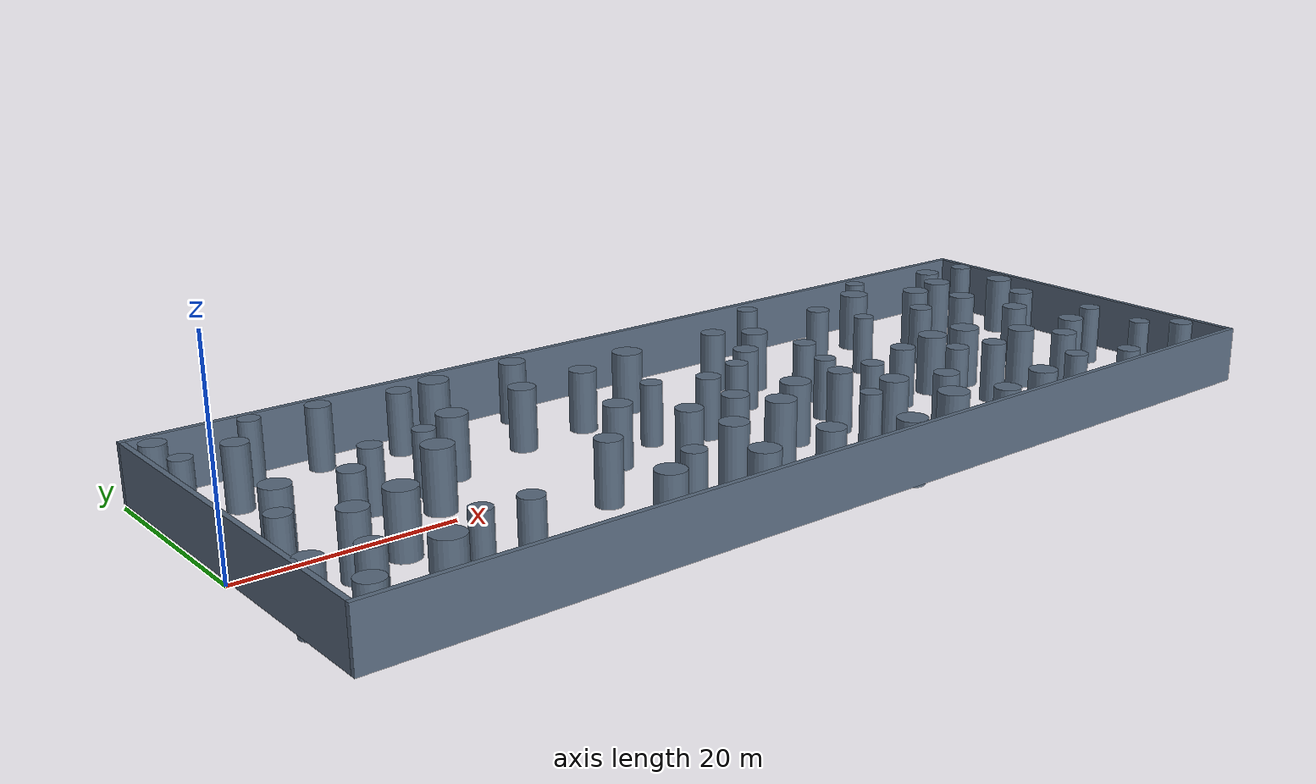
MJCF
<mujoco model="S02">
  <compiler angle="radian" />
  <include file="boundary.xml" />
  <custom>
    <text name="scene_metadata" data="{&quot;id&quot;: &quot;S02&quot;, &quot;difficulty&quot;: &quot;medium&quot;, &quot;title&quot;: &quot;SANDO medium static forest&quot;, &quot;source&quot;: &quot;SANDO&quot;, &quot;dynamic&quot;: false, &quot;benchmark_role&quot;: &quot;primary&quot;, &quot;review_duration_s&quot;: 3.0, &quot;layout_policy&quot;: &quot;direct conversion of pinned SANDO forest geometry; no route reservation&quot;, &quot;source_provenance&quot;: {&quot;world_file&quot;: &quot;research_dev/sando/docker/dev-workspace/upstream-93b2eed/worlds/medium_forest.world&quot;, &quot;world_sha256&quot;: &quot;e6e0fffdd9a7d8694fc80690a59021df07ca7d9ad56307871bdc0fa023aa25c1&quot;, &quot;x_translation_m&quot;: -3.0, &quot;published_density&quot;: 0.1, &quot;cylinder_count&quot;: 81}, &quot;topology_acceptance&quot;: {&quot;require_direct_route_blocked&quot;: true, &quot;require_reachable&quot;: true, &quot;max_full_length_straight_lanes&quot;: 0, &quot;max_clear_straight_run_m&quot;: null}, &quot;obstacle_metadata&quot;: [{&quot;role&quot;: &quot;sando_static_forest&quot;, &quot;source_name&quot;: &quot;0&quot;}, {&quot;role&quot;: &quot;sando_static_forest&quot;, &quot;source_name&quot;: &quot;1&quot;}, {&quot;role&quot;: &quot;sando_static_forest&quot;, &quot;source_name&quot;: &quot;2&quot;}, {&quot;role&quot;: &quot;sando_static_forest&quot;, &quot;source_name&quot;: &quot;3&quot;}, {&quot;role&quot;: &quot;sando_static_forest&quot;, &quot;source_name&quot;: &quot;4&quot;}, {&quot;role&quot;: &quot;sando_static_forest&quot;, &quot;source_name&quot;: &quot;5&quot;}, {&quot;role&quot;: &quot;sando_static_forest&quot;, &quot;source_name&quot;: &quot;6&quot;}, {&quot;role&quot;: &quot;sando_static_forest&quot;, &quot;source_name&quot;: &quot;7&quot;}, {&quot;role&quot;: &quot;sando_static_forest&quot;, &quot;source_name&quot;: &quot;8&quot;}, {&quot;role&quot;: &quot;sando_static_forest&quot;, &quot;source_name&quot;: &quot;9&quot;}, {&quot;role&quot;: &quot;sando_static_forest&quot;, &quot;source_name&quot;: &quot;10&quot;}, {&quot;role&quot;: &quot;sando_static_forest&quot;, &quot;source_name&quot;: &quot;11&quot;}, {&quot;role&quot;: &quot;sando_static_forest&quot;, &quot;source_name&quot;: &quot;12&quot;}, {&quot;role&quot;: &quot;sando_static_forest&quot;, &quot;source_name&quot;: &quot;13&quot;}, {&quot;role&quot;: &quot;sando_static_forest&quot;, &quot;source_name&quot;: &quot;14&quot;}, {&quot;role&quot;: &quot;sando_static_forest&quot;, &quot;source_name&quot;: &quot;15&quot;}, {&quot;role&quot;: &quot;sando_static_forest&quot;, &quot;source_name&quot;: &quot;16&quot;}, {&quot;role&quot;: &quot;sando_static_forest&quot;, &quot;source_name&quot;: &quot;17&quot;}, {&quot;role&quot;: &quot;sando_static_forest&quot;, &quot;source_name&quot;: &quot;18&quot;}, {&quot;role&quot;: &quot;sando_static_forest&quot;, &quot;source_name&quot;: &quot;19&quot;}, {&quot;role&quot;: &quot;sando_static_forest&quot;, &quot;source_name&quot;: &quot;20&quot;}, {&quot;role&quot;: &quot;sando_static_forest&quot;, &quot;source_name&quot;: &quot;21&quot;}, {&quot;role&quot;: &quot;sando_static_forest&quot;, &quot;source_name&quot;: &quot;22&quot;}, {&quot;role&quot;: &quot;sando_static_forest&quot;, &quot;source_name&quot;: &quot;23&quot;}, {&quot;role&quot;: &quot;sando_static_forest&quot;, &quot;source_name&quot;: &quot;24&quot;}, {&quot;role&quot;: &quot;sando_static_forest&quot;, &quot;source_name&quot;: &quot;25&quot;}, {&quot;role&quot;: &quot;sando_static_forest&quot;, &quot;source_name&quot;: &quot;26&quot;}, {&quot;role&quot;: &quot;sando_static_forest&quot;, &quot;source_name&quot;: &quot;27&quot;}, {&quot;role&quot;: &quot;sando_static_forest&quot;, &quot;source_name&quot;: &quot;28&quot;}, {&quot;role&quot;: &quot;sando_static_forest&quot;, &quot;source_name&quot;: &quot;29&quot;}, {&quot;role&quot;: &quot;sando_static_forest&quot;, &quot;source_name&quot;: &quot;30&quot;}, {&quot;role&quot;: &quot;sando_static_forest&quot;, &quot;source_name&quot;: &quot;31&quot;}, {&quot;role&quot;: &quot;sando_static_forest&quot;, &quot;source_name&quot;: &quot;32&quot;}, {&quot;role&quot;: &quot;sando_static_forest&quot;, &quot;source_name&quot;: &quot;33&quot;}, {&quot;role&quot;: &quot;sando_static_forest&quot;, &quot;source_name&quot;: &quot;34&quot;}, {&quot;role&quot;: &quot;sando_static_forest&quot;, &quot;source_name&quot;: &quot;35&quot;}, {&quot;role&quot;: &quot;sando_static_forest&quot;, &quot;source_name&quot;: &quot;36&quot;}, {&quot;role&quot;: &quot;sando_static_forest&quot;, &quot;source_name&quot;: &quot;37&quot;}, {&quot;role&quot;: &quot;sando_static_forest&quot;, &quot;source_name&quot;: &quot;38&quot;}, {&quot;role&quot;: &quot;sando_static_forest&quot;, &quot;source_name&quot;: &quot;39&quot;}, {&quot;role&quot;: &quot;sando_static_forest&quot;, &quot;source_name&quot;: &quot;40&quot;}, {&quot;role&quot;: &quot;sando_static_forest&quot;, &quot;source_name&quot;: &quot;41&quot;}, {&quot;role&quot;: &quot;sando_static_forest&quot;, &quot;source_name&quot;: &quot;42&quot;}, {&quot;role&quot;: &quot;sando_static_forest&quot;, &quot;source_name&quot;: &quot;43&quot;}, {&quot;role&quot;: &quot;sando_static_forest&quot;, &quot;source_name&quot;: &quot;44&quot;}, {&quot;role&quot;: &quot;sando_static_forest&quot;, &quot;source_name&quot;: &quot;45&quot;}, {&quot;role&quot;: &quot;sando_static_forest&quot;, &quot;source_name&quot;: &quot;46&quot;}, {&quot;role&quot;: &quot;sando_static_forest&quot;, &quot;source_name&quot;: &quot;47&quot;}, {&quot;role&quot;: &quot;sando_static_forest&quot;, &quot;source_name&quot;: &quot;48&quot;}, {&quot;role&quot;: &quot;sando_static_forest&quot;, &quot;source_name&quot;: &quot;49&quot;}, {&quot;role&quot;: &quot;sando_static_forest&quot;, &quot;source_name&quot;: &quot;50&quot;}, {&quot;role&quot;: &quot;sando_static_forest&quot;, &quot;source_name&quot;: &quot;51&quot;}, {&quot;role&quot;: &quot;sando_static_forest&quot;, &quot;source_name&quot;: &quot;52&quot;}, {&quot;role&quot;: &quot;sando_static_forest&quot;, &quot;source_name&quot;: &quot;53&quot;}, {&quot;role&quot;: &quot;sando_static_forest&quot;, &quot;source_name&quot;: &quot;54&quot;}, {&quot;role&quot;: &quot;sando_static_forest&quot;, &quot;source_name&quot;: &quot;55&quot;}, {&quot;role&quot;: &quot;sando_static_forest&quot;, &quot;source_name&quot;: &quot;56&quot;}, {&quot;role&quot;: &quot;sando_static_forest&quot;, &quot;source_name&quot;: &quot;57&quot;}, {&quot;role&quot;: &quot;sando_static_forest&quot;, &quot;source_name&quot;: &quot;58&quot;}, {&quot;role&quot;: &quot;sando_static_forest&quot;, &quot;source_name&quot;: &quot;59&quot;}, {&quot;role&quot;: &quot;sando_static_forest&quot;, &quot;source_name&quot;: &quot;60&quot;}, {&quot;role&quot;: &quot;sando_static_forest&quot;, &quot;source_name&quot;: &quot;61&quot;}, {&quot;role&quot;: &quot;sando_static_forest&quot;, &quot;source_name&quot;: &quot;62&quot;}, {&quot;role&quot;: &quot;sando_static_forest&quot;, &quot;source_name&quot;: &quot;63&quot;}, {&quot;role&quot;: &quot;sando_static_forest&quot;, &quot;source_name&quot;: &quot;64&quot;}, {&quot;role&quot;: &quot;sando_static_forest&quot;, &quot;source_name&quot;: &quot;65&quot;}, {&quot;role&quot;: &quot;sando_static_forest&quot;, &quot;source_name&quot;: &quot;66&quot;}, {&quot;role&quot;: &quot;sando_static_forest&quot;, &quot;source_name&quot;: &quot;67&quot;}, {&quot;role&quot;: &quot;sando_static_forest&quot;, &quot;source_name&quot;: &quot;68&quot;}, {&quot;role&quot;: &quot;sando_static_forest&quot;, &quot;source_name&quot;: &quot;69&quot;}, {&quot;role&quot;: &quot;sando_static_forest&quot;, &quot;source_name&quot;: &quot;70&quot;}, {&quot;role&quot;: &quot;sando_static_forest&quot;, &quot;source_name&quot;: &quot;71&quot;}, {&quot;role&quot;: &quot;sando_static_forest&quot;, &quot;source_name&quot;: &quot;72&quot;}, {&quot;role&quot;: &quot;sando_static_forest&quot;, &quot;source_name&quot;: &quot;73&quot;}, {&quot;role&quot;: &quot;sando_static_forest&quot;, &quot;source_name&quot;: &quot;74&quot;}, {&quot;role&quot;: &quot;sando_static_forest&quot;, &quot;source_name&quot;: &quot;75&quot;}, {&quot;role&quot;: &quot;sando_static_forest&quot;, &quot;source_name&quot;: &quot;76&quot;}, {&quot;role&quot;: &quot;sando_static_forest&quot;, &quot;source_name&quot;: &quot;77&quot;}, {&quot;role&quot;: &quot;sando_static_forest&quot;, &quot;source_name&quot;: &quot;78&quot;}, {&quot;role&quot;: &quot;sando_static_forest&quot;, &quot;source_name&quot;: &quot;79&quot;}, {&quot;role&quot;: &quot;sando_static_forest&quot;, &quot;source_name&quot;: &quot;80&quot;}]}" />
  </custom>
  <worldbody>
    <body name="obstacle_4" mocap="true" pos="42.276200000000003 -8.9784299999999995 3" user="0 0 0 0 0 0">
      <geom name="obstacle_geom_4" type="cylinder" size="1.3789800000000001 3" rgba="0.35 0.42 0.5 1" />
    </body>
    <body name="obstacle_5" mocap="true" pos="77.697299999999998 -7.3944700000000001 3" user="0 0 0 0 0 0">
      <geom name="obstacle_geom_5" type="cylinder" size="1.2024699999999999 3" rgba="0.35 0.42 0.5 1" />
    </body>
    <body name="obstacle_6" mocap="true" pos="89.757000000000005 0.17536599999999999 3" user="0 0 0 0 0 0">
      <geom name="obstacle_geom_6" type="cylinder" size="1.29169 3" rgba="0.35 0.42 0.5 1" />
    </body>
    <body name="obstacle_7" mocap="true" pos="61.5107 -9.2921899999999997 3" user="0 0 0 0 0 0">
      <geom name="obstacle_geom_7" type="cylinder" size="1.3778999999999999 3" rgba="0.35 0.42 0.5 1" />
    </body>
    <body name="obstacle_8" mocap="true" pos="80.096400000000003 14.8871 3" user="0 0 0 0 0 0">
      <geom name="obstacle_geom_8" type="cylinder" size="1.49139 3" rgba="0.35 0.42 0.5 1" />
    </body>
    <body name="obstacle_9" mocap="true" pos="88.795100000000005 6.8571099999999996 3" user="0 0 0 0 0 0">
      <geom name="obstacle_geom_9" type="cylinder" size="1.3649199999999999 3" rgba="0.35 0.42 0.5 1" />
    </body>
    <body name="obstacle_10" mocap="true" pos="43.555500000000002 4.2025399999999999 3" user="0 0 0 0 0 0">
      <geom name="obstacle_geom_10" type="cylinder" size="1.0503499999999999 3" rgba="0.35 0.42 0.5 1" />
    </body>
    <body name="obstacle_11" mocap="true" pos="47.769199999999998 13.528700000000001 3" user="0 0 0 0 0 0">
      <geom name="obstacle_geom_11" type="cylinder" size="1.4833000000000001 3" rgba="0.35 0.42 0.5 1" />
    </body>
    <body name="obstacle_12" mocap="true" pos="54.7333 -18.075199999999999 3" user="0 0 0 0 0 0">
      <geom name="obstacle_geom_12" type="cylinder" size="1.4025099999999999 3" rgba="0.35 0.42 0.5 1" />
    </body>
    <body name="obstacle_13" mocap="true" pos="81.705299999999994 6.3227599999999997 3" user="0 0 0 0 0 0">
      <geom name="obstacle_geom_13" type="cylinder" size="1.1994100000000001 3" rgba="0.35 0.42 0.5 1" />
    </body>
    <body name="obstacle_14" mocap="true" pos="85.843599999999995 -9.6049900000000008 3" user="0 0 0 0 0 0">
      <geom name="obstacle_geom_14" type="cylinder" size="1.2467900000000001 3" rgba="0.35 0.42 0.5 1" />
    </body>
    <body name="obstacle_15" mocap="true" pos="19.993500000000001 2.50664 3" user="0 0 0 0 0 0">
      <geom name="obstacle_geom_15" type="cylinder" size="1.4352400000000001 3" rgba="0.35 0.42 0.5 1" />
    </body>
    <body name="obstacle_16" mocap="true" pos="79.418300000000002 -1.9268099999999999 3" user="0 0 0 0 0 0">
      <geom name="obstacle_geom_16" type="cylinder" size="1.48377 3" rgba="0.35 0.42 0.5 1" />
    </body>
    <body name="obstacle_17" mocap="true" pos="11.812799999999999 1.9317500000000001 3" user="0 0 0 0 0 0">
      <geom name="obstacle_geom_17" type="cylinder" size="1.1600299999999999 3" rgba="0.35 0.42 0.5 1" />
    </body>
    <body name="obstacle_18" mocap="true" pos="95.202299999999994 3.8645700000000001 3" user="0 0 0 0 0 0">
      <geom name="obstacle_geom_18" type="cylinder" size="1.27372 3" rgba="0.35 0.42 0.5 1" />
    </body>
    <body name="obstacle_19" mocap="true" pos="59.393300000000004 -4.32254 3" user="0 0 0 0 0 0">
      <geom name="obstacle_geom_19" type="cylinder" size="1.2224900000000001 3" rgba="0.35 0.42 0.5 1" />
    </body>
    <body name="obstacle_20" mocap="true" pos="19.650500000000001 -11.8133 3" user="0 0 0 0 0 0">
      <geom name="obstacle_geom_20" type="cylinder" size="1.14516 3" rgba="0.35 0.42 0.5 1" />
    </body>
    <body name="obstacle_21" mocap="true" pos="47.715400000000002 -15.317299999999999 3" user="0 0 0 0 0 0">
      <geom name="obstacle_geom_21" type="cylinder" size="1.32833 3" rgba="0.35 0.42 0.5 1" />
    </body>
    <body name="obstacle_22" mocap="true" pos="91.120099999999994 12.713200000000001 3" user="0 0 0 0 0 0">
      <geom name="obstacle_geom_22" type="cylinder" size="1.4383900000000001 3" rgba="0.35 0.42 0.5 1" />
    </body>
    <body name="obstacle_23" mocap="true" pos="53.941299999999998 -4.0304099999999998 3" user="0 0 0 0 0 0">
      <geom name="obstacle_geom_23" type="cylinder" size="1.4615400000000001 3" rgba="0.35 0.42 0.5 1" />
    </body>
    <body name="obstacle_24" mocap="true" pos="98.495999999999995 15.7288 3" user="0 0 0 0 0 0">
      <geom name="obstacle_geom_24" type="cylinder" size="1.1378200000000001 3" rgba="0.35 0.42 0.5 1" />
    </body>
    <body name="obstacle_25" mocap="true" pos="61.043499999999995 -0.51400400000000002 3" user="0 0 0 0 0 0">
      <geom name="obstacle_geom_25" type="cylinder" size="1.0411900000000001 3" rgba="0.35 0.42 0.5 1" />
    </body>
    <body name="obstacle_26" mocap="true" pos="25.034600000000001 8.6009600000000006 3" user="0 0 0 0 0 0">
      <geom name="obstacle_geom_26" type="cylinder" size="1.4225399999999999 3" rgba="0.35 0.42 0.5 1" />
    </body>
    <body name="obstacle_27" mocap="true" pos="80.889799999999994 -15.088900000000001 3" user="0 0 0 0 0 0">
      <geom name="obstacle_geom_27" type="cylinder" size="1.1102300000000001 3" rgba="0.35 0.42 0.5 1" />
    </body>
    <body name="obstacle_28" mocap="true" pos="5.7502200000000006 2.7553700000000001 3" user="0 0 0 0 0 0">
      <geom name="obstacle_geom_28" type="cylinder" size="1.34884 3" rgba="0.35 0.42 0.5 1" />
    </body>
    <body name="obstacle_29" mocap="true" pos="67.601299999999995 -17.732700000000001 3" user="0 0 0 0 0 0">
      <geom name="obstacle_geom_29" type="cylinder" size="1.2670999999999999 3" rgba="0.35 0.42 0.5 1" />
    </body>
    <body name="obstacle_30" mocap="true" pos="37.352499999999999 17.968299999999999 3" user="0 0 0 0 0 0">
      <geom name="obstacle_geom_30" type="cylinder" size="1.3031699999999999 3" rgba="0.35 0.42 0.5 1" />
    </body>
    <body name="obstacle_31" mocap="true" pos="95.171099999999996 -11.9642 3" user="0 0 0 0 0 0">
      <geom name="obstacle_geom_31" type="cylinder" size="1.0108200000000001 3" rgba="0.35 0.42 0.5 1" />
    </body>
    <body name="obstacle_32" mocap="true" pos="3.3331799999999996 -2.8108200000000001 3" user="0 0 0 0 0 0">
      <geom name="obstacle_geom_32" type="cylinder" size="1.1052900000000001 3" rgba="0.35 0.42 0.5 1" />
    </body>
    <body name="obstacle_33" mocap="true" pos="35.367699999999999 -12.0648 3" user="0 0 0 0 0 0">
      <geom name="obstacle_geom_33" type="cylinder" size="1.1299600000000001 3" rgba="0.35 0.42 0.5 1" />
    </body>
    <body name="obstacle_34" mocap="true" pos="10.906000000000001 18.5337 3" user="0 0 0 0 0 0">
      <geom name="obstacle_geom_34" type="cylinder" size="1.01969 3" rgba="0.35 0.42 0.5 1" />
    </body>
    <body name="obstacle_35" mocap="true" pos="72.613600000000005 12.735099999999999 3" user="0 0 0 0 0 0">
      <geom name="obstacle_geom_35" type="cylinder" size="1.1792800000000001 3" rgba="0.35 0.42 0.5 1" />
    </body>
    <body name="obstacle_36" mocap="true" pos="66.889499999999998 17.649799999999999 3" user="0 0 0 0 0 0">
      <geom name="obstacle_geom_36" type="cylinder" size="1.0847100000000001 3" rgba="0.35 0.42 0.5 1" />
    </body>
    <body name="obstacle_37" mocap="true" pos="83.617999999999995 -5.8854899999999999 3" user="0 0 0 0 0 0">
      <geom name="obstacle_geom_37" type="cylinder" size="1.3381000000000001 3" rgba="0.35 0.42 0.5 1" />
    </body>
    <body name="obstacle_38" mocap="true" pos="47.236199999999997 -3.3698299999999999 3" user="0 0 0 0 0 0">
      <geom name="obstacle_geom_38" type="cylinder" size="1.2984 3" rgba="0.35 0.42 0.5 1" />
    </body>
    <body name="obstacle_39" mocap="true" pos="31.617600000000003 -5.3555799999999998 3" user="0 0 0 0 0 0">
      <geom name="obstacle_geom_39" type="cylinder" size="1.2543 3" rgba="0.35 0.42 0.5 1" />
    </body>
    <body name="obstacle_40" mocap="true" pos="73.613699999999994 -6.194 3" user="0 0 0 0 0 0">
      <geom name="obstacle_geom_40" type="cylinder" size="1.12547 3" rgba="0.35 0.42 0.5 1" />
    </body>
    <body name="obstacle_41" mocap="true" pos="24.605799999999999 17.0916 3" user="0 0 0 0 0 0">
      <geom name="obstacle_geom_41" type="cylinder" size="1.1404399999999999 3" rgba="0.35 0.42 0.5 1" />
    </body>
    <body name="obstacle_42" mocap="true" pos="63.068799999999996 4.5660699999999999 3" user="0 0 0 0 0 0">
      <geom name="obstacle_geom_42" type="cylinder" size="1.14394 3" rgba="0.35 0.42 0.5 1" />
    </body>
    <body name="obstacle_43" mocap="true" pos="1.3427899999999999 -11.572800000000001 3" user="0 0 0 0 0 0">
      <geom name="obstacle_geom_43" type="cylinder" size="1.19401 3" rgba="0.35 0.42 0.5 1" />
    </body>
    <body name="obstacle_44" mocap="true" pos="63.432199999999995 -4.5823200000000002 3" user="0 0 0 0 0 0">
      <geom name="obstacle_geom_44" type="cylinder" size="1.11971 3" rgba="0.35 0.42 0.5 1" />
    </body>
    <body name="obstacle_45" mocap="true" pos="41.660499999999999 -3.6583199999999998 3" user="0 0 0 0 0 0">
      <geom name="obstacle_geom_45" type="cylinder" size="1.2840800000000001 3" rgba="0.35 0.42 0.5 1" />
    </body>
    <body name="obstacle_46" mocap="true" pos="48.757399999999997 2.3077100000000002 3" user="0 0 0 0 0 0">
      <geom name="obstacle_geom_46" type="cylinder" size="1.2091099999999999 3" rgba="0.35 0.42 0.5 1" />
    </body>
    <body name="obstacle_47" mocap="true" pos="49.4739 -6.97567 3" user="0 0 0 0 0 0">
      <geom name="obstacle_geom_47" type="cylinder" size="1.44194 3" rgba="0.35 0.42 0.5 1" />
    </body>
    <body name="obstacle_48" mocap="true" pos="86.4482 11.619 3" user="0 0 0 0 0 0">
      <geom name="obstacle_geom_48" type="cylinder" size="1.40452 3" rgba="0.35 0.42 0.5 1" />
    </body>
    <body name="obstacle_49" mocap="true" pos="62.909700000000001 -15.412000000000001 3" user="0 0 0 0 0 0">
      <geom name="obstacle_geom_49" type="cylinder" size="1.4997100000000001 3" rgba="0.35 0.42 0.5 1" />
    </body>
    <body name="obstacle_50" mocap="true" pos="10.979799999999999 -14.105600000000001 3" user="0 0 0 0 0 0">
      <geom name="obstacle_geom_50" type="cylinder" size="1.4934099999999999 3" rgba="0.35 0.42 0.5 1" />
    </body>
    <body name="obstacle_51" mocap="true" pos="28.630500000000001 17.765499999999999 3" user="0 0 0 0 0 0">
      <geom name="obstacle_geom_51" type="cylinder" size="1.4368300000000001 3" rgba="0.35 0.42 0.5 1" />
    </body>
    <body name="obstacle_52" mocap="true" pos="39.964399999999998 -15.551399999999999 3" user="0 0 0 0 0 0">
      <geom name="obstacle_geom_52" type="cylinder" size="1.4269700000000001 3" rgba="0.35 0.42 0.5 1" />
    </body>
    <body name="obstacle_53" mocap="true" pos="3.0383599999999999 -17.246700000000001 3" user="0 0 0 0 0 0">
      <geom name="obstacle_geom_53" type="cylinder" size="1.2264900000000001 3" rgba="0.35 0.42 0.5 1" />
    </body>
    <body name="obstacle_54" mocap="true" pos="93.507900000000006 16.415900000000001 3" user="0 0 0 0 0 0">
      <geom name="obstacle_geom_54" type="cylinder" size="1.27918 3" rgba="0.35 0.42 0.5 1" />
    </body>
    <body name="obstacle_55" mocap="true" pos="74.404700000000005 7.6418900000000001 3" user="0 0 0 0 0 0">
      <geom name="obstacle_geom_55" type="cylinder" size="1.0209999999999999 3" rgba="0.35 0.42 0.5 1" />
    </body>
    <body name="obstacle_56" mocap="true" pos="37.590899999999998 1.4142699999999999 3" user="0 0 0 0 0 0">
      <geom name="obstacle_geom_56" type="cylinder" size="1.3561799999999999 3" rgba="0.35 0.42 0.5 1" />
    </body>
    <body name="obstacle_57" mocap="true" pos="33.771799999999999 10.835599999999999 3" user="0 0 0 0 0 0">
      <geom name="obstacle_geom_57" type="cylinder" size="1.29356 3" rgba="0.35 0.42 0.5 1" />
    </body>
    <body name="obstacle_58" mocap="true" pos="17.172000000000001 18.149699999999999 3" user="0 0 0 0 0 0">
      <geom name="obstacle_geom_58" type="cylinder" size="1.16913 3" rgba="0.35 0.42 0.5 1" />
    </body>
    <body name="obstacle_59" mocap="true" pos="5.90747 -12.049200000000001 3" user="0 0 0 0 0 0">
      <geom name="obstacle_geom_59" type="cylinder" size="1.1974 3" rgba="0.35 0.42 0.5 1" />
    </body>
    <body name="obstacle_60" mocap="true" pos="83.379000000000005 18.062999999999999 3" user="0 0 0 0 0 0">
      <geom name="obstacle_geom_60" type="cylinder" size="1.0354300000000001 3" rgba="0.35 0.42 0.5 1" />
    </body>
    <body name="obstacle_61" mocap="true" pos="69.464699999999993 -2.7564600000000001 3" user="0 0 0 0 0 0">
      <geom name="obstacle_geom_61" type="cylinder" size="1.2395400000000001 3" rgba="0.35 0.42 0.5 1" />
    </body>
    <body name="obstacle_62" mocap="true" pos="74.303600000000003 -16.3536 3" user="0 0 0 0 0 0">
      <geom name="obstacle_geom_62" type="cylinder" size="1.36738 3" rgba="0.35 0.42 0.5 1" />
    </body>
    <body name="obstacle_63" mocap="true" pos="7.4298000000000002 13.672800000000001 3" user="0 0 0 0 0 0">
      <geom name="obstacle_geom_63" type="cylinder" size="1.1969000000000001 3" rgba="0.35 0.42 0.5 1" />
    </body>
    <body name="obstacle_64" mocap="true" pos="12.997299999999999 -3.7856100000000001 3" user="0 0 0 0 0 0">
      <geom name="obstacle_geom_64" type="cylinder" size="1.4515100000000001 3" rgba="0.35 0.42 0.5 1" />
    </body>
    <body name="obstacle_65" mocap="true" pos="15.357600000000001 -11.464399999999999 3" user="0 0 0 0 0 0">
      <geom name="obstacle_geom_65" type="cylinder" size="1.02105 3" rgba="0.35 0.42 0.5 1" />
    </body>
    <body name="obstacle_66" mocap="true" pos="90.642700000000005 -6.6494999999999997 3" user="0 0 0 0 0 0">
      <geom name="obstacle_geom_66" type="cylinder" size="1.2732000000000001 3" rgba="0.35 0.42 0.5 1" />
    </body>
    <body name="obstacle_67" mocap="true" pos="66.581900000000005 -11.175700000000001 3" user="0 0 0 0 0 0">
      <geom name="obstacle_geom_67" type="cylinder" size="1.24932 3" rgba="0.35 0.42 0.5 1" />
    </body>
    <body name="obstacle_68" mocap="true" pos="86.070999999999998 -17.401399999999999 3" user="0 0 0 0 0 0">
      <geom name="obstacle_geom_68" type="cylinder" size="1.1093900000000001 3" rgba="0.35 0.42 0.5 1" />
    </body>
    <body name="obstacle_69" mocap="true" pos="2.5176400000000001 13.0563 3" user="0 0 0 0 0 0">
      <geom name="obstacle_geom_69" type="cylinder" size="1.0203199999999999 3" rgba="0.35 0.42 0.5 1" />
    </body>
    <body name="obstacle_70" mocap="true" pos="15.640699999999999 5.9061000000000003 3" user="0 0 0 0 0 0">
      <geom name="obstacle_geom_70" type="cylinder" size="1.0803499999999999 3" rgba="0.35 0.42 0.5 1" />
    </body>
    <body name="obstacle_71" mocap="true" pos="57.202199999999998 6.6955299999999998 3" user="0 0 0 0 0 0">
      <geom name="obstacle_geom_71" type="cylinder" size="1.2524999999999999 3" rgba="0.35 0.42 0.5 1" />
    </body>
    <body name="obstacle_72" mocap="true" pos="97.700000000000003 9.1975200000000008 3" user="0 0 0 0 0 0">
      <geom name="obstacle_geom_72" type="cylinder" size="1.3789199999999999 3" rgba="0.35 0.42 0.5 1" />
    </body>
    <body name="obstacle_73" mocap="true" pos="53.463500000000003 3.72702 3" user="0 0 0 0 0 0">
      <geom name="obstacle_geom_73" type="cylinder" size="1.1030500000000001 3" rgba="0.35 0.42 0.5 1" />
    </body>
    <body name="obstacle_74" mocap="true" pos="58.424399999999999 13.1806 3" user="0 0 0 0 0 0">
      <geom name="obstacle_geom_74" type="cylinder" size="1.2411099999999999 3" rgba="0.35 0.42 0.5 1" />
    </body>
    <body name="obstacle_75" mocap="true" pos="41.051600000000001 11.5777 3" user="0 0 0 0 0 0">
      <geom name="obstacle_geom_75" type="cylinder" size="1.3284899999999999 3" rgba="0.35 0.42 0.5 1" />
    </body>
    <body name="obstacle_76" mocap="true" pos="61.881399999999999 10.7806 3" user="0 0 0 0 0 0">
      <geom name="obstacle_geom_76" type="cylinder" size="1.3204899999999999 3" rgba="0.35 0.42 0.5 1" />
    </body>
    <body name="obstacle_77" mocap="true" pos="74.914400000000001 -1.6515299999999999 3" user="0 0 0 0 0 0">
      <geom name="obstacle_geom_77" type="cylinder" size="1.4558899999999999 3" rgba="0.35 0.42 0.5 1" />
    </body>
    <body name="obstacle_78" mocap="true" pos="57.030700000000003 -10.7714 3" user="0 0 0 0 0 0">
      <geom name="obstacle_geom_78" type="cylinder" size="1.0376700000000001 3" rgba="0.35 0.42 0.5 1" />
    </body>
    <body name="obstacle_79" mocap="true" pos="31.080100000000002 -14.372400000000001 3" user="0 0 0 0 0 0">
      <geom name="obstacle_geom_79" type="cylinder" size="1.4097 3" rgba="0.35 0.42 0.5 1" />
    </body>
    <body name="obstacle_80" mocap="true" pos="8.1355000000000004 -5.2687099999999996 3" user="0 0 0 0 0 0">
      <geom name="obstacle_geom_80" type="cylinder" size="1.28301 3" rgba="0.35 0.42 0.5 1" />
    </body>
    <body name="obstacle_81" mocap="true" pos="2.1469699999999996 17.859300000000001 3" user="0 0 0 0 0 0">
      <geom name="obstacle_geom_81" type="cylinder" size="1.17394 3" rgba="0.35 0.42 0.5 1" />
    </body>
    <body name="obstacle_82" mocap="true" pos="21.090299999999999 6.5905899999999997 3" user="0 0 0 0 0 0">
      <geom name="obstacle_geom_82" type="cylinder" size="1.0352600000000001 3" rgba="0.35 0.42 0.5 1" />
    </body>
    <body name="obstacle_83" mocap="true" pos="95.6614 -5.2179099999999998 3" user="0 0 0 0 0 0">
      <geom name="obstacle_geom_83" type="cylinder" size="1.06159 3" rgba="0.35 0.42 0.5 1" />
    </body>
    <body name="obstacle_84" mocap="true" pos="98.165000000000006 -14.9856 3" user="0 0 0 0 0 0">
      <geom name="obstacle_geom_84" type="cylinder" size="1.14632 3" rgba="0.35 0.42 0.5 1" />
    </body>
  </worldbody>
</mujoco>

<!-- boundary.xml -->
<mujoco model="navigation-boundary">
  <worldbody>
    <body name="obstacle_0" mocap="true" pos="50 -19.75 3.25" user="0 0 0 0 0 0">
      <geom name="obstacle_geom_0" type="box" size="50 0.25 2.75" rgba="0.35 0.42 0.5 1" />
    </body>
    <body name="obstacle_1" mocap="true" pos="50 19.75 3.25" user="0 0 0 0 0 0">
      <geom name="obstacle_geom_1" type="box" size="50 0.25 2.75" rgba="0.35 0.42 0.5 1" />
    </body>
    <body name="obstacle_2" mocap="true" pos="0.25 0 3.25" user="0 0 0 0 0 0">
      <geom name="obstacle_geom_2" type="box" size="0.25 19.5 2.75" rgba="0.35 0.42 0.5 1" />
    </body>
    <body name="obstacle_3" mocap="true" pos="99.75 0 3.25" user="0 0 0 0 0 0">
      <geom name="obstacle_geom_3" type="box" size="0.25 19.5 2.75" rgba="0.35 0.42 0.5 1" />
    </body>
  </worldbody>
</mujoco>
